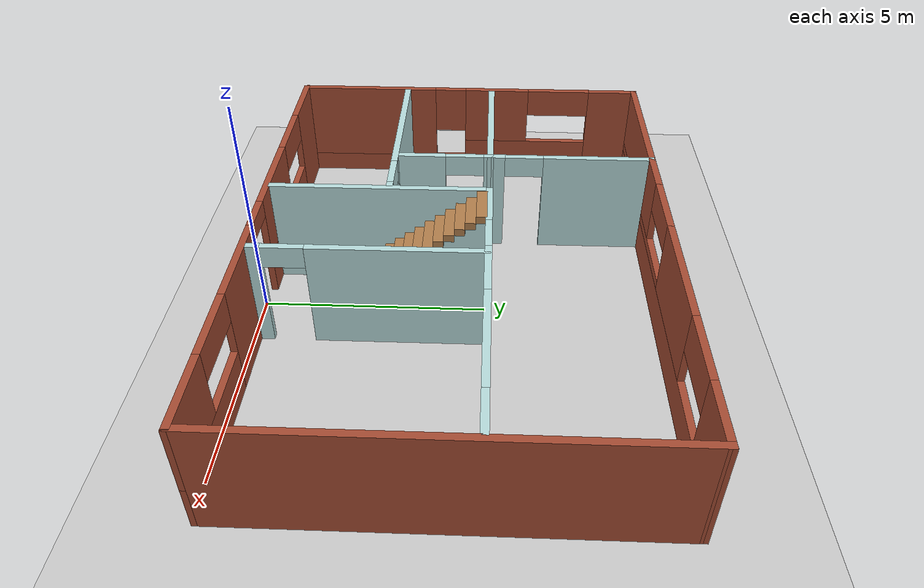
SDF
<sdf version="1.6">
 <world name="default">
  <model name="ground_plane">
   <static>1</static>
   <link name="link">
    <collision name="collision">
     <geometry><plane><normal>0 0 1</normal><size>100 100</size></plane></geometry>
     <surface><friction><ode><mu>100</mu><mu2>50</mu2></ode></friction></surface>
    </collision>
    <visual name="visual">
     <cast_shadows>0</cast_shadows>
     <geometry><plane><normal>0 0 1</normal><size>100 100</size></plane></geometry>
     <material>
      <script><uri>file://media/materials/scripts/gazebo.material</uri><name>Gazebo/Grey</name></script>
     </material>
    </visual>
   </link>
  </model>
  <model name="myhouse">
   <pose>-0.11281 4.46422 0 0 -0 0</pose>
   <link name="Stairs_1">
    <visual name="Stairs_1_Visual_0">
     <pose>-0.469808 -2.82929 0.083333 0 -0 -3.14159</pose>
     <geometry><box><size>1 0.233333 0.166667</size></box></geometry>
     <material>
      <script><uri>file://media/materials/scripts/gazebo.material</uri><name>Gazebo/Wood</name></script>
      <ambient>1 1 1 1</ambient>
     </material>
     <meta><layer>0</layer></meta>
    </visual>
    <collision name="Stairs_1_Collision_0">
     <geometry><box><size>1 0.233333 0.166667</size></box></geometry>
     <pose>-0.469808 -2.82929 0.083333 0 -0 -3.14159</pose>
    </collision>
    <visual name="Stairs_1_Visual_1">
     <pose>-0.469808 -2.59596 0.25 0 -0 -3.14159</pose>
     <geometry><box><size>1 0.233333 0.166667</size></box></geometry>
     <material>
      <script><uri>file://media/materials/scripts/gazebo.material</uri><name>Gazebo/Wood</name></script>
      <ambient>1 1 1 1</ambient>
     </material>
     <meta><layer>0</layer></meta>
    </visual>
    <collision name="Stairs_1_Collision_1">
     <geometry><box><size>1 0.233333 0.166667</size></box></geometry>
     <pose>-0.469808 -2.59596 0.25 0 -0 -3.14159</pose>
    </collision>
    <visual name="Stairs_1_Visual_2">
     <pose>-0.469808 -2.36263 0.416667 0 -0 -3.14159</pose>
     <geometry><box><size>1 0.233333 0.166667</size></box></geometry>
     <material>
      <script><uri>file://media/materials/scripts/gazebo.material</uri><name>Gazebo/Wood</name></script>
      <ambient>1 1 1 1</ambient>
     </material>
     <meta><layer>0</layer></meta>
    </visual>
    <collision name="Stairs_1_Collision_2">
     <geometry><box><size>1 0.233333 0.166667</size></box></geometry>
     <pose>-0.469808 -2.36263 0.416667 0 -0 -3.14159</pose>
    </collision>
    <visual name="Stairs_1_Visual_3">
     <pose>-0.469808 -2.12929 0.583333 0 -0 -3.14159</pose>
     <geometry><box><size>1 0.233333 0.166667</size></box></geometry>
     <material>
      <script><uri>file://media/materials/scripts/gazebo.material</uri><name>Gazebo/Wood</name></script>
      <ambient>1 1 1 1</ambient>
     </material>
     <meta><layer>0</layer></meta>
    </visual>
    <collision name="Stairs_1_Collision_3">
     <geometry><box><size>1 0.233333 0.166667</size></box></geometry>
     <pose>-0.469808 -2.12929 0.583333 0 -0 -3.14159</pose>
    </collision>
    <visual name="Stairs_1_Visual_4">
     <pose>-0.469808 -1.89596 0.75 0 -0 -3.14159</pose>
     <geometry><box><size>1 0.233333 0.166667</size></box></geometry>
     <material>
      <script><uri>file://media/materials/scripts/gazebo.material</uri><name>Gazebo/Wood</name></script>
      <ambient>1 1 1 1</ambient>
     </material>
     <meta><layer>0</layer></meta>
    </visual>
    <collision name="Stairs_1_Collision_4">
     <geometry><box><size>1 0.233333 0.166667</size></box></geometry>
     <pose>-0.469808 -1.89596 0.75 0 -0 -3.14159</pose>
    </collision>
    <visual name="Stairs_1_Visual_5">
     <pose>-0.469808 -1.66263 0.916667 0 -0 -3.14159</pose>
     <geometry><box><size>1 0.233333 0.166667</size></box></geometry>
     <material>
      <script><uri>file://media/materials/scripts/gazebo.material</uri><name>Gazebo/Wood</name></script>
      <ambient>1 1 1 1</ambient>
     </material>
     <meta><layer>0</layer></meta>
    </visual>
    <collision name="Stairs_1_Collision_5">
     <geometry><box><size>1 0.233333 0.166667</size></box></geometry>
     <pose>-0.469808 -1.66263 0.916667 0 -0 -3.14159</pose>
    </collision>
    <visual name="Stairs_1_Visual_6">
     <pose>-0.469808 -1.42929 1.08333 0 -0 -3.14159</pose>
     <geometry><box><size>1 0.233333 0.166667</size></box></geometry>
     <material>
      <script><uri>file://media/materials/scripts/gazebo.material</uri><name>Gazebo/Wood</name></script>
      <ambient>1 1 1 1</ambient>
     </material>
     <meta><layer>0</layer></meta>
    </visual>
    <collision name="Stairs_1_Collision_6">
     <geometry><box><size>1 0.233333 0.166667</size></box></geometry>
     <pose>-0.469808 -1.42929 1.08333 0 -0 -3.14159</pose>
    </collision>
    <visual name="Stairs_1_Visual_7">
     <pose>-0.469808 -1.19596 1.25 0 -0 -3.14159</pose>
     <geometry><box><size>1 0.233333 0.166667</size></box></geometry>
     <material>
      <script><uri>file://media/materials/scripts/gazebo.material</uri><name>Gazebo/Wood</name></script>
      <ambient>1 1 1 1</ambient>
     </material>
     <meta><layer>0</layer></meta>
    </visual>
    <collision name="Stairs_1_Collision_7">
     <geometry><box><size>1 0.233333 0.166667</size></box></geometry>
     <pose>-0.469808 -1.19596 1.25 0 -0 -3.14159</pose>
    </collision>
    <visual name="Stairs_1_Visual_8">
     <pose>-0.469808 -0.962626 1.41667 0 -0 -3.14159</pose>
     <geometry><box><size>1 0.233333 0.166667</size></box></geometry>
     <material>
      <script><uri>file://media/materials/scripts/gazebo.material</uri><name>Gazebo/Wood</name></script>
      <ambient>1 1 1 1</ambient>
     </material>
     <meta><layer>0</layer></meta>
    </visual>
    <collision name="Stairs_1_Collision_8">
     <geometry><box><size>1 0.233333 0.166667</size></box></geometry>
     <pose>-0.469808 -0.962626 1.41667 0 -0 -3.14159</pose>
    </collision>
    <visual name="Stairs_1_Visual_9">
     <pose>-0.469808 -0.729293 1.58333 0 -0 -3.14159</pose>
     <geometry><box><size>1 0.233333 0.166667</size></box></geometry>
     <material>
      <script><uri>file://media/materials/scripts/gazebo.material</uri><name>Gazebo/Wood</name></script>
      <ambient>1 1 1 1</ambient>
     </material>
     <meta><layer>0</layer></meta>
    </visual>
    <collision name="Stairs_1_Collision_9">
     <geometry><box><size>1 0.233333 0.166667</size></box></geometry>
     <pose>-0.469808 -0.729293 1.58333 0 -0 -3.14159</pose>
    </collision>
    <visual name="Stairs_1_Visual_10">
     <pose>-0.469808 -0.49596 1.75 0 -0 -3.14159</pose>
     <geometry><box><size>1 0.233333 0.166667</size></box></geometry>
     <material>
      <script><uri>file://media/materials/scripts/gazebo.material</uri><name>Gazebo/Wood</name></script>
      <ambient>1 1 1 1</ambient>
     </material>
     <meta><layer>0</layer></meta>
    </visual>
    <collision name="Stairs_1_Collision_10">
     <geometry><box><size>1 0.233333 0.166667</size></box></geometry>
     <pose>-0.469808 -0.49596 1.75 0 -0 -3.14159</pose>
    </collision>
    <visual name="Stairs_1_Visual_11">
     <pose>-0.469808 -0.262626 1.91667 0 -0 -3.14159</pose>
     <geometry><box><size>1 0.233333 0.166667</size></box></geometry>
     <material>
      <script><uri>file://media/materials/scripts/gazebo.material</uri><name>Gazebo/Wood</name></script>
      <ambient>1 1 1 1</ambient>
     </material>
     <meta><layer>0</layer></meta>
    </visual>
    <collision name="Stairs_1_Collision_11">
     <geometry><box><size>1 0.233333 0.166667</size></box></geometry>
     <pose>-0.469808 -0.262626 1.91667 0 -0 -3.14159</pose>
    </collision>
    <visual name="Stairs_1_Visual_12">
     <pose>-0.469808 -0.029293 2.08333 0 -0 -3.14159</pose>
     <geometry><box><size>1 0.233333 0.166667</size></box></geometry>
     <material>
      <script><uri>file://media/materials/scripts/gazebo.material</uri><name>Gazebo/Wood</name></script>
      <ambient>1 1 1 1</ambient>
     </material>
     <meta><layer>0</layer></meta>
    </visual>
    <collision name="Stairs_1_Collision_12">
     <geometry><box><size>1 0.233333 0.166667</size></box></geometry>
     <pose>-0.469808 -0.029293 2.08333 0 -0 -3.14159</pose>
    </collision>
    <visual name="Stairs_1_Visual_13">
     <pose>-0.469808 0.20404 2.25 0 -0 -3.14159</pose>
     <geometry><box><size>1 0.233333 0.166667</size></box></geometry>
     <material>
      <script><uri>file://media/materials/scripts/gazebo.material</uri><name>Gazebo/Wood</name></script>
      <ambient>1 1 1 1</ambient>
     </material>
     <meta><layer>0</layer></meta>
    </visual>
    <collision name="Stairs_1_Collision_13">
     <geometry><box><size>1 0.233333 0.166667</size></box></geometry>
     <pose>-0.469808 0.20404 2.25 0 -0 -3.14159</pose>
    </collision>
    <visual name="Stairs_1_Visual_14">
     <pose>-0.469808 0.437373 2.41667 0 -0 -3.14159</pose>
     <geometry><box><size>1 0.233333 0.166667</size></box></geometry>
     <material>
      <script><uri>file://media/materials/scripts/gazebo.material</uri><name>Gazebo/Wood</name></script>
      <ambient>1 1 1 1</ambient>
     </material>
     <meta><layer>0</layer></meta>
    </visual>
    <collision name="Stairs_1_Collision_14">
     <geometry><box><size>1 0.233333 0.166667</size></box></geometry>
     <pose>-0.469808 0.437373 2.41667 0 -0 -3.14159</pose>
    </collision>
   </link>
   <link name="Wall_116">
    <pose>1.19186 -1.85654 0 0 0 -1.5708</pose>
    <visual name="Wall_116_Visual_0">
     <pose>-0.621483 0 1.25 0 -0 0</pose>
     <geometry><box><size>3.75703 0.15 2.5</size></box></geometry>
     <material>
      <script><uri>file://media/materials/scripts/gazebo.material</uri><name>Gazebo/Grey</name></script>
      <ambient>0.721569 0.866667 0.866667 1</ambient>
     </material>
     <meta><layer>0</layer></meta>
    </visual>
    <collision name="Wall_116_Collision_0">
     <geometry><box><size>3.75703 0.15 2.5</size></box></geometry>
     <pose>-0.621483 0 1.25 0 -0 0</pose>
    </collision>
    <visual name="Wall_116_Visual_1">
     <pose>2.32852 0 1.25 0 -0 0</pose>
     <geometry><box><size>0.342966 0.15 2.5</size></box></geometry>
     <material>
      <script><uri>file://media/materials/scripts/gazebo.material</uri><name>Gazebo/Grey</name></script>
      <ambient>0.721569 0.866667 0.866667 1</ambient>
     </material>
     <meta><layer>0</layer></meta>
    </visual>
    <collision name="Wall_116_Collision_1">
     <geometry><box><size>0.342966 0.15 2.5</size></box></geometry>
     <pose>2.32852 0 1.25 0 -0 0</pose>
    </collision>
    <visual name="Wall_116_Visual_2">
     <pose>1.70703 0 2.25 0 -0 0</pose>
     <geometry><box><size>0.9 0.15 0.5</size></box></geometry>
     <material>
      <script><uri>file://media/materials/scripts/gazebo.material</uri><name>Gazebo/Grey</name></script>
      <ambient>0.721569 0.866667 0.866667 1</ambient>
     </material>
     <meta><layer>0</layer></meta>
    </visual>
    <collision name="Wall_116_Collision_2">
     <geometry><box><size>0.9 0.15 0.5</size></box></geometry>
     <pose>1.70703 0 2.25 0 -0 0</pose>
    </collision>
   </link>
   <link name="Wall_124">
    <pose>0 -4.37502 0 0 -0 0</pose>
    <visual name="Wall_124_Visual_0">
     <pose>-5.15314 0 1.25 0 -0 0</pose>
     <geometry><box><size>1.69372 0.15 2.5</size></box></geometry>
     <material>
      <script><uri>file://media/materials/scripts/gazebo.material</uri><name>Gazebo/Bricks</name></script>
      <ambient>1 1 1 1</ambient>
     </material>
     <meta><layer>0</layer></meta>
    </visual>
    <collision name="Wall_124_Collision_0">
     <geometry><box><size>1.69372 0.15 2.5</size></box></geometry>
     <pose>-5.15314 0 1.25 0 -0 0</pose>
    </collision>
    <visual name="Wall_124_Visual_1">
     <pose>1.60947 0 1.25 0 -0 0</pose>
     <geometry><box><size>2.19554 0.15 2.5</size></box></geometry>
     <material>
      <script><uri>file://media/materials/scripts/gazebo.material</uri><name>Gazebo/Bricks</name></script>
      <ambient>1 1 1 1</ambient>
     </material>
     <meta><layer>0</layer></meta>
    </visual>
    <collision name="Wall_124_Collision_1">
     <geometry><box><size>2.19554 0.15 2.5</size></box></geometry>
     <pose>1.60947 0 1.25 0 -0 0</pose>
    </collision>
    <visual name="Wall_124_Visual_2">
     <pose>-2.34729 0 0.5 0 -0 0</pose>
     <geometry><box><size>3.91797 0.15 1</size></box></geometry>
     <material>
      <script><uri>file://media/materials/scripts/gazebo.material</uri><name>Gazebo/Bricks</name></script>
      <ambient>1 1 1 1</ambient>
     </material>
     <meta><layer>0</layer></meta>
    </visual>
    <collision name="Wall_124_Collision_2">
     <geometry><box><size>3.91797 0.15 1</size></box></geometry>
     <pose>-2.34729 0 0.5 0 -0 0</pose>
    </collision>
    <visual name="Wall_124_Visual_3">
     <pose>4.35362 0 0.5 0 -0 0</pose>
     <geometry><box><size>3.29276 0.15 1</size></box></geometry>
     <material>
      <script><uri>file://media/materials/scripts/gazebo.material</uri><name>Gazebo/Bricks</name></script>
      <ambient>1 1 1 1</ambient>
     </material>
     <meta><layer>0</layer></meta>
    </visual>
    <collision name="Wall_124_Collision_3">
     <geometry><box><size>3.29276 0.15 1</size></box></geometry>
     <pose>4.35362 0 0.5 0 -0 0</pose>
    </collision>
    <visual name="Wall_124_Visual_4">
     <pose>-1.54729 0 1.75 0 -0 0</pose>
     <geometry><box><size>2.31797 0.15 1.5</size></box></geometry>
     <material>
      <script><uri>file://media/materials/scripts/gazebo.material</uri><name>Gazebo/Bricks</name></script>
      <ambient>1 1 1 1</ambient>
     </material>
     <meta><layer>0</layer></meta>
    </visual>
    <collision name="Wall_124_Collision_4">
     <geometry><box><size>2.31797 0.15 1.5</size></box></geometry>
     <pose>-1.54729 0 1.75 0 -0 0</pose>
    </collision>
    <visual name="Wall_124_Visual_5">
     <pose>-1.54729 0 1.75 0 -0 0</pose>
     <geometry><box><size>2.31797 0.15 1.5</size></box></geometry>
     <material>
      <script><uri>file://media/materials/scripts/gazebo.material</uri><name>Gazebo/Bricks</name></script>
      <ambient>1 1 1 1</ambient>
     </material>
     <meta><layer>0</layer></meta>
    </visual>
    <collision name="Wall_124_Collision_5">
     <geometry><box><size>2.31797 0.15 1.5</size></box></geometry>
     <pose>-1.54729 0 1.75 0 -0 0</pose>
    </collision>
    <visual name="Wall_124_Visual_6">
     <pose>5.15362 0 1.75 0 -0 0</pose>
     <geometry><box><size>1.69276 0.15 1.5</size></box></geometry>
     <material>
      <script><uri>file://media/materials/scripts/gazebo.material</uri><name>Gazebo/Bricks</name></script>
      <ambient>1 1 1 1</ambient>
     </material>
     <meta><layer>0</layer></meta>
    </visual>
    <collision name="Wall_124_Collision_6">
     <geometry><box><size>1.69276 0.15 1.5</size></box></geometry>
     <pose>5.15362 0 1.75 0 -0 0</pose>
    </collision>
    <visual name="Wall_124_Visual_7">
     <pose>-3.50628 0 2.15 0 -0 0</pose>
     <geometry><box><size>1.6 0.15 0.7</size></box></geometry>
     <material>
      <script><uri>file://media/materials/scripts/gazebo.material</uri><name>Gazebo/Bricks</name></script>
      <ambient>1 1 1 1</ambient>
     </material>
     <meta><layer>0</layer></meta>
    </visual>
    <collision name="Wall_124_Collision_7">
     <geometry><box><size>1.6 0.15 0.7</size></box></geometry>
     <pose>-3.50628 0 2.15 0 -0 0</pose>
    </collision>
    <visual name="Wall_124_Visual_8">
     <pose>3.50724 0 2.15 0 -0 0</pose>
     <geometry><box><size>1.6 0.15 0.7</size></box></geometry>
     <material>
      <script><uri>file://media/materials/scripts/gazebo.material</uri><name>Gazebo/Bricks</name></script>
      <ambient>1 1 1 1</ambient>
     </material>
     <meta><layer>0</layer></meta>
    </visual>
    <collision name="Wall_124_Collision_8">
     <geometry><box><size>1.6 0.15 0.7</size></box></geometry>
     <pose>3.50724 0 2.15 0 -0 0</pose>
    </collision>
    <visual name="Wall_124_Visual_9">
     <pose>0.061697 0 2.3 0 -0 0</pose>
     <geometry><box><size>0.9 0.15 0.4</size></box></geometry>
     <material>
      <script><uri>file://media/materials/scripts/gazebo.material</uri><name>Gazebo/Bricks</name></script>
      <ambient>1 1 1 1</ambient>
     </material>
     <meta><layer>0</layer></meta>
    </visual>
    <collision name="Wall_124_Collision_9">
     <geometry><box><size>0.9 0.15 0.4</size></box></geometry>
     <pose>0.061697 0 2.3 0 -0 0</pose>
    </collision>
    <visual name="Wall_124_Visual_10">
     <pose>0.061697 0 2.3 0 -0 0</pose>
     <geometry><box><size>0.9 0.15 0.4</size></box></geometry>
     <material>
      <script><uri>file://media/materials/scripts/gazebo.material</uri><name>Gazebo/Bricks</name></script>
      <ambient>1 1 1 1</ambient>
     </material>
     <meta><layer>0</layer></meta>
    </visual>
    <collision name="Wall_124_Collision_10">
     <geometry><box><size>0.9 0.15 0.4</size></box></geometry>
     <pose>0.061697 0 2.3 0 -0 0</pose>
    </collision>
   </link>
   <link name="Wall_125">
    <collision name="Wall_125_Collision">
     <geometry><box><size>8.9 0.15 2.5</size></box></geometry>
     <pose>0 0 1.25 0 -0 0</pose>
    </collision>
    <visual name="Wall_125_Visual">
     <pose>0 0 1.25 0 -0 0</pose>
     <geometry><box><size>8.9 0.15 2.5</size></box></geometry>
     <material>
      <script><uri>file://media/materials/scripts/gazebo.material</uri><name>Gazebo/Bricks</name></script>
      <ambient>1 1 1 1</ambient>
     </material>
     <meta><layer>0</layer></meta>
    </visual>
    <pose>5.9275 -2e-05 0 0 -0 1.57022</pose>
   </link>
   <link name="Wall_126">
    <pose>0 4.36848 0 0 0 -3.1405</pose>
    <visual name="Wall_126_Visual_0">
     <pose>-5.28653 0 1.25 0 -0 0</pose>
     <geometry><box><size>1.43694 0.15 2.5</size></box></geometry>
     <material>
      <script><uri>file://media/materials/scripts/gazebo.material</uri><name>Gazebo/Bricks</name></script>
      <ambient>1 1 1 1</ambient>
     </material>
     <meta><layer>0</layer></meta>
    </visual>
    <collision name="Wall_126_Collision_0">
     <geometry><box><size>1.43694 0.15 2.5</size></box></geometry>
     <pose>-5.28653 0 1.25 0 -0 0</pose>
    </collision>
    <visual name="Wall_126_Visual_1">
     <pose>0.718468 0 0.4 0 -0 0</pose>
     <geometry><box><size>10.5731 0.15 0.8</size></box></geometry>
     <material>
      <script><uri>file://media/materials/scripts/gazebo.material</uri><name>Gazebo/Bricks</name></script>
      <ambient>1 1 1 1</ambient>
     </material>
     <meta><layer>0</layer></meta>
    </visual>
    <collision name="Wall_126_Collision_1">
     <geometry><box><size>10.5731 0.15 0.8</size></box></geometry>
     <pose>0.718468 0 0.4 0 -0 0</pose>
    </collision>
    <visual name="Wall_126_Visual_2">
     <pose>-1.57991 0 1.65 0 -0 0</pose>
     <geometry><box><size>2.77631 0.15 1.7</size></box></geometry>
     <material>
      <script><uri>file://media/materials/scripts/gazebo.material</uri><name>Gazebo/Bricks</name></script>
      <ambient>1 1 1 1</ambient>
     </material>
     <meta><layer>0</layer></meta>
    </visual>
    <collision name="Wall_126_Collision_2">
     <geometry><box><size>2.77631 0.15 1.7</size></box></geometry>
     <pose>-1.57991 0 1.65 0 -0 0</pose>
    </collision>
    <visual name="Wall_126_Visual_3">
     <pose>2.90663 0 0.9 0 -0 0</pose>
     <geometry><box><size>6.19676 0.15 0.2</size></box></geometry>
     <material>
      <script><uri>file://media/materials/scripts/gazebo.material</uri><name>Gazebo/Bricks</name></script>
      <ambient>1 1 1 1</ambient>
     </material>
     <meta><layer>0</layer></meta>
    </visual>
    <collision name="Wall_126_Collision_3">
     <geometry><box><size>6.19676 0.15 0.2</size></box></geometry>
     <pose>2.90663 0 0.9 0 -0 0</pose>
    </collision>
    <visual name="Wall_126_Visual_4">
     <pose>3.70662 0 1.75 0 -0 0</pose>
     <geometry><box><size>4.59676 0.15 1.5</size></box></geometry>
     <material>
      <script><uri>file://media/materials/scripts/gazebo.material</uri><name>Gazebo/Bricks</name></script>
      <ambient>1 1 1 1</ambient>
     </material>
     <meta><layer>0</layer></meta>
    </visual>
    <collision name="Wall_126_Collision_4">
     <geometry><box><size>4.59676 0.15 1.5</size></box></geometry>
     <pose>3.70662 0 1.75 0 -0 0</pose>
    </collision>
    <visual name="Wall_126_Visual_5">
     <pose>-3.76807 0 2.05 0 -0 0</pose>
     <geometry><box><size>1.6 0.15 0.9</size></box></geometry>
     <material>
      <script><uri>file://media/materials/scripts/gazebo.material</uri><name>Gazebo/Bricks</name></script>
      <ambient>1 1 1 1</ambient>
     </material>
     <meta><layer>0</layer></meta>
    </visual>
    <collision name="Wall_126_Collision_5">
     <geometry><box><size>1.6 0.15 0.9</size></box></geometry>
     <pose>-3.76807 0 2.05 0 -0 0</pose>
    </collision>
    <visual name="Wall_126_Visual_6">
     <pose>0.608246 0 2.15 0 -0 0</pose>
     <geometry><box><size>1.6 0.15 0.7</size></box></geometry>
     <material>
      <script><uri>file://media/materials/scripts/gazebo.material</uri><name>Gazebo/Bricks</name></script>
      <ambient>1 1 1 1</ambient>
     </material>
     <meta><layer>0</layer></meta>
    </visual>
    <collision name="Wall_126_Collision_6">
     <geometry><box><size>1.6 0.15 0.7</size></box></geometry>
     <pose>0.608246 0 2.15 0 -0 0</pose>
    </collision>
   </link>
   <link name="Wall_127">
    <pose>-5.93 0.02998 0 0 0 -1.5708</pose>
    <visual name="Wall_127_Visual_0">
     <pose>-3.77443 0 1.25 0 -0 0</pose>
     <geometry><box><size>1.26514 0.15 2.5</size></box></geometry>
     <material>
      <script><uri>file://media/materials/scripts/gazebo.material</uri><name>Gazebo/Bricks</name></script>
      <ambient>1 1 1 1</ambient>
     </material>
     <meta><layer>0</layer></meta>
    </visual>
    <collision name="Wall_127_Collision_0">
     <geometry><box><size>1.26514 0.15 2.5</size></box></geometry>
     <pose>-3.77443 0 1.25 0 -0 0</pose>
    </collision>
    <visual name="Wall_127_Visual_1">
     <pose>-1.50767 0 0.5 0 -0 0</pose>
     <geometry><box><size>3.26837 0.15 1</size></box></geometry>
     <material>
      <script><uri>file://media/materials/scripts/gazebo.material</uri><name>Gazebo/Bricks</name></script>
      <ambient>1 1 1 1</ambient>
     </material>
     <meta><layer>0</layer></meta>
    </visual>
    <collision name="Wall_127_Collision_1">
     <geometry><box><size>3.26837 0.15 1</size></box></geometry>
     <pose>-1.50767 0 0.5 0 -0 0</pose>
    </collision>
    <visual name="Wall_127_Visual_2">
     <pose>2.26676 0 0.25 0 -0 0</pose>
     <geometry><box><size>4.28049 0.15 0.5</size></box></geometry>
     <material>
      <script><uri>file://media/materials/scripts/gazebo.material</uri><name>Gazebo/Bricks</name></script>
      <ambient>1 1 1 1</ambient>
     </material>
     <meta><layer>0</layer></meta>
    </visual>
    <collision name="Wall_127_Collision_2">
     <geometry><box><size>4.28049 0.15 0.5</size></box></geometry>
     <pose>2.26676 0 0.25 0 -0 0</pose>
    </collision>
    <visual name="Wall_127_Visual_3">
     <pose>2.66676 0 1.5 0 -0 0</pose>
     <geometry><box><size>3.48049 0.15 2</size></box></geometry>
     <material>
      <script><uri>file://media/materials/scripts/gazebo.material</uri><name>Gazebo/Bricks</name></script>
      <ambient>1 1 1 1</ambient>
     </material>
     <meta><layer>0</layer></meta>
    </visual>
    <collision name="Wall_127_Collision_3">
     <geometry><box><size>3.48049 0.15 2</size></box></geometry>
     <pose>2.66676 0 1.5 0 -0 0</pose>
    </collision>
    <visual name="Wall_127_Visual_4">
     <pose>-0.707673 0 1.75 0 -0 0</pose>
     <geometry><box><size>1.66837 0.15 1.5</size></box></geometry>
     <material>
      <script><uri>file://media/materials/scripts/gazebo.material</uri><name>Gazebo/Bricks</name></script>
      <ambient>1 1 1 1</ambient>
     </material>
     <meta><layer>0</layer></meta>
    </visual>
    <collision name="Wall_127_Collision_4">
     <geometry><box><size>1.66837 0.15 1.5</size></box></geometry>
     <pose>-0.707673 0 1.75 0 -0 0</pose>
    </collision>
    <visual name="Wall_127_Visual_5">
     <pose>0.526513 0 1.9 0 -0 0</pose>
     <geometry><box><size>0.8 0.15 1.2</size></box></geometry>
     <material>
      <script><uri>file://media/materials/scripts/gazebo.material</uri><name>Gazebo/Bricks</name></script>
      <ambient>1 1 1 1</ambient>
     </material>
     <meta><layer>0</layer></meta>
    </visual>
    <collision name="Wall_127_Collision_5">
     <geometry><box><size>0.8 0.15 1.2</size></box></geometry>
     <pose>0.526513 0 1.9 0 -0 0</pose>
    </collision>
    <visual name="Wall_127_Visual_6">
     <pose>-2.34186 0 2.15 0 -0 0</pose>
     <geometry><box><size>1.6 0.15 0.7</size></box></geometry>
     <material>
      <script><uri>file://media/materials/scripts/gazebo.material</uri><name>Gazebo/Bricks</name></script>
      <ambient>1 1 1 1</ambient>
     </material>
     <meta><layer>0</layer></meta>
    </visual>
    <collision name="Wall_127_Collision_6">
     <geometry><box><size>1.6 0.15 0.7</size></box></geometry>
     <pose>-2.34186 0 2.15 0 -0 0</pose>
    </collision>
   </link>
   <link name="Wall_129">
    <collision name="Wall_129_Collision">
     <geometry><box><size>5 0.15 2.5</size></box></geometry>
     <pose>0 0 1.25 0 -0 0</pose>
    </collision>
    <visual name="Wall_129_Visual">
     <pose>0 0 1.25 0 -0 0</pose>
     <geometry><box><size>5 0.15 2.5</size></box></geometry>
     <material>
      <script><uri>file://media/materials/scripts/gazebo.material</uri><name>Gazebo/Grey</name></script>
      <ambient>0.721569 0.866667 0.866667 1</ambient>
     </material>
     <meta><layer>0</layer></meta>
    </visual>
    <pose>-1.05639 -1.82996 0 0 -0 1.5708</pose>
   </link>
   <link name="Wall_139">
    <pose>2.37537 0.594546 0 0 -0 0</pose>
    <visual name="Wall_139_Visual_0">
     <pose>-2.88296 0 1.25 0 -0 0</pose>
     <geometry><box><size>1.23409 0.15 2.5</size></box></geometry>
     <material>
      <script><uri>file://media/materials/scripts/gazebo.material</uri><name>Gazebo/Grey</name></script>
      <ambient>0.721569 0.866667 0.866667 1</ambient>
     </material>
     <meta><layer>0</layer></meta>
    </visual>
    <collision name="Wall_139_Collision_0">
     <geometry><box><size>1.23409 0.15 2.5</size></box></geometry>
     <pose>-2.88296 0 1.25 0 -0 0</pose>
    </collision>
    <visual name="Wall_139_Visual_1">
     <pose>-0.682749 0 1.25 0 -0 0</pose>
     <geometry><box><size>1.36633 0.15 2.5</size></box></geometry>
     <material>
      <script><uri>file://media/materials/scripts/gazebo.material</uri><name>Gazebo/Grey</name></script>
      <ambient>0.721569 0.866667 0.866667 1</ambient>
     </material>
     <meta><layer>0</layer></meta>
    </visual>
    <collision name="Wall_139_Collision_1">
     <geometry><box><size>1.36633 0.15 2.5</size></box></geometry>
     <pose>-0.682749 0 1.25 0 -0 0</pose>
    </collision>
    <visual name="Wall_139_Visual_2">
     <pose>3.00021 0 1.25 0 -0 0</pose>
     <geometry><box><size>0.999584 0.15 2.5</size></box></geometry>
     <material>
      <script><uri>file://media/materials/scripts/gazebo.material</uri><name>Gazebo/Grey</name></script>
      <ambient>0.721569 0.866667 0.866667 1</ambient>
     </material>
     <meta><layer>0</layer></meta>
    </visual>
    <collision name="Wall_139_Collision_2">
     <geometry><box><size>0.999584 0.15 2.5</size></box></geometry>
     <pose>3.00021 0 1.25 0 -0 0</pose>
    </collision>
    <visual name="Wall_139_Visual_3">
     <pose>-1.81591 0 2.25 0 -0 0</pose>
     <geometry><box><size>0.9 0.15 0.5</size></box></geometry>
     <material>
      <script><uri>file://media/materials/scripts/gazebo.material</uri><name>Gazebo/Grey</name></script>
      <ambient>0.721569 0.866667 0.866667 1</ambient>
     </material>
     <meta><layer>0</layer></meta>
    </visual>
    <collision name="Wall_139_Collision_3">
     <geometry><box><size>0.9 0.15 0.5</size></box></geometry>
     <pose>-1.81591 0 2.25 0 -0 0</pose>
    </collision>
    <visual name="Wall_139_Visual_4">
     <pose>1.25042 0 2.25 0 -0 0</pose>
     <geometry><box><size>2.5 0.15 0.5</size></box></geometry>
     <material>
      <script><uri>file://media/materials/scripts/gazebo.material</uri><name>Gazebo/Grey</name></script>
      <ambient>0.721569 0.866667 0.866667 1</ambient>
     </material>
     <meta><layer>0</layer></meta>
    </visual>
    <collision name="Wall_139_Collision_4">
     <geometry><box><size>2.5 0.15 0.5</size></box></geometry>
     <pose>1.25042 0 2.25 0 -0 0</pose>
    </collision>
   </link>
   <link name="Wall_154">
    <pose>-3.48298 -1.6348 0 0 -0 0</pose>
    <visual name="Wall_154_Visual_0">
     <pose>-0.535862 0 1.25 0 -0 0</pose>
     <geometry><box><size>3.67828 0.15 2.5</size></box></geometry>
     <material>
      <script><uri>file://media/materials/scripts/gazebo.material</uri><name>Gazebo/Grey</name></script>
      <ambient>0.721569 0.866667 0.866667 1</ambient>
     </material>
     <meta><layer>0</layer></meta>
    </visual>
    <collision name="Wall_154_Collision_0">
     <geometry><box><size>3.67828 0.15 2.5</size></box></geometry>
     <pose>-0.535862 0 1.25 0 -0 0</pose>
    </collision>
    <visual name="Wall_154_Visual_1">
     <pose>2.28914 0 1.25 0 -0 0</pose>
     <geometry><box><size>0.171723 0.15 2.5</size></box></geometry>
     <material>
      <script><uri>file://media/materials/scripts/gazebo.material</uri><name>Gazebo/Grey</name></script>
      <ambient>0.721569 0.866667 0.866667 1</ambient>
     </material>
     <meta><layer>0</layer></meta>
    </visual>
    <collision name="Wall_154_Collision_1">
     <geometry><box><size>0.171723 0.15 2.5</size></box></geometry>
     <pose>2.28914 0 1.25 0 -0 0</pose>
    </collision>
    <visual name="Wall_154_Visual_2">
     <pose>1.75328 0 2.25 0 -0 0</pose>
     <geometry><box><size>0.9 0.15 0.5</size></box></geometry>
     <material>
      <script><uri>file://media/materials/scripts/gazebo.material</uri><name>Gazebo/Grey</name></script>
      <ambient>0.721569 0.866667 0.866667 1</ambient>
     </material>
     <meta><layer>0</layer></meta>
    </visual>
    <collision name="Wall_154_Collision_2">
     <geometry><box><size>0.9 0.15 0.5</size></box></geometry>
     <pose>1.75328 0 2.25 0 -0 0</pose>
    </collision>
   </link>
   <link name="Wall_157">
    <collision name="Wall_157_Collision">
     <geometry><box><size>3.48493 0.15 2.5</size></box></geometry>
     <pose>0 0 1.25 0 -0 0</pose>
    </collision>
    <visual name="Wall_157_Visual">
     <pose>0 0 1.25 0 -0 0</pose>
     <geometry><box><size>3.48493 0.15 2.5</size></box></geometry>
     <material>
      <script><uri>file://media/materials/scripts/gazebo.material</uri><name>Gazebo/Grey</name></script>
      <ambient>0.721569 0.866667 0.866667 1</ambient>
     </material>
     <meta><layer>0</layer></meta>
    </visual>
    <pose>-4.14746 0.597189 0 0 -0 3.14147</pose>
   </link>
   <link name="Wall_160">
    <pose>-2.48 2.47198 0 0 -0 1.5708</pose>
    <visual name="Wall_160_Visual_0">
     <pose>-1.74137 0 1.25 0 -0 0</pose>
     <geometry><box><size>0.417261 0.15 2.5</size></box></geometry>
     <material>
      <script><uri>file://media/materials/scripts/gazebo.material</uri><name>Gazebo/Grey</name></script>
      <ambient>0.721569 0.866667 0.866667 1</ambient>
     </material>
     <meta><layer>0</layer></meta>
    </visual>
    <collision name="Wall_160_Collision_0">
     <geometry><box><size>0.417261 0.15 2.5</size></box></geometry>
     <pose>-1.74137 0 1.25 0 -0 0</pose>
    </collision>
    <visual name="Wall_160_Visual_1">
     <pose>0.65863 0 1.25 0 -0 0</pose>
     <geometry><box><size>2.58274 0.15 2.5</size></box></geometry>
     <material>
      <script><uri>file://media/materials/scripts/gazebo.material</uri><name>Gazebo/Grey</name></script>
      <ambient>0.721569 0.866667 0.866667 1</ambient>
     </material>
     <meta><layer>0</layer></meta>
    </visual>
    <collision name="Wall_160_Collision_1">
     <geometry><box><size>2.58274 0.15 2.5</size></box></geometry>
     <pose>0.65863 0 1.25 0 -0 0</pose>
    </collision>
    <visual name="Wall_160_Visual_2">
     <pose>-1.08274 0 2.25 0 -0 0</pose>
     <geometry><box><size>0.9 0.15 0.5</size></box></geometry>
     <material>
      <script><uri>file://media/materials/scripts/gazebo.material</uri><name>Gazebo/Grey</name></script>
      <ambient>0.721569 0.866667 0.866667 1</ambient>
     </material>
     <meta><layer>0</layer></meta>
    </visual>
    <collision name="Wall_160_Collision_2">
     <geometry><box><size>0.9 0.15 0.5</size></box></geometry>
     <pose>-1.08274 0 2.25 0 -0 0</pose>
    </collision>
   </link>
   <link name="Wall_162">
    <pose>-2.48 -0.47802 0 0 0 -1.5708</pose>
    <visual name="Wall_162_Visual_0">
     <pose>-1.03704 0 1.25 0 -0 0</pose>
     <geometry><box><size>0.225923 0.15 2.5</size></box></geometry>
     <material>
      <script><uri>file://media/materials/scripts/gazebo.material</uri><name>Gazebo/Grey</name></script>
      <ambient>0.721569 0.866667 0.866667 1</ambient>
     </material>
     <meta><layer>0</layer></meta>
    </visual>
    <collision name="Wall_162_Collision_0">
     <geometry><box><size>0.225923 0.15 2.5</size></box></geometry>
     <pose>-1.03704 0 1.25 0 -0 0</pose>
    </collision>
    <visual name="Wall_162_Visual_1">
     <pose>0.562961 0 1.25 0 -0 0</pose>
     <geometry><box><size>1.17408 0.15 2.5</size></box></geometry>
     <material>
      <script><uri>file://media/materials/scripts/gazebo.material</uri><name>Gazebo/Grey</name></script>
      <ambient>0.721569 0.866667 0.866667 1</ambient>
     </material>
     <meta><layer>0</layer></meta>
    </visual>
    <collision name="Wall_162_Collision_1">
     <geometry><box><size>1.17408 0.15 2.5</size></box></geometry>
     <pose>0.562961 0 1.25 0 -0 0</pose>
    </collision>
    <visual name="Wall_162_Visual_2">
     <pose>-0.474077 0 2.25 0 -0 0</pose>
     <geometry><box><size>0.9 0.15 0.5</size></box></geometry>
     <material>
      <script><uri>file://media/materials/scripts/gazebo.material</uri><name>Gazebo/Grey</name></script>
      <ambient>0.721569 0.866667 0.866667 1</ambient>
     </material>
     <meta><layer>0</layer></meta>
    </visual>
    <collision name="Wall_162_Collision_2">
     <geometry><box><size>0.9 0.15 0.5</size></box></geometry>
     <pose>-0.474077 0 2.25 0 -0 0</pose>
    </collision>
   </link>
   <static>1</static>
  </model>
 </world>
</sdf>
